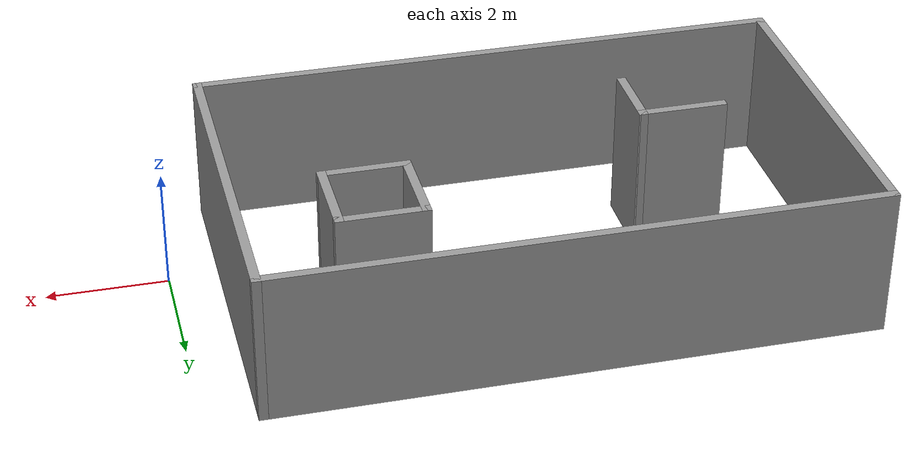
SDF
<?xml version='1.0'?>
<sdf version='1.6'>
  <model name='room2'>
    <pose frame=''>-5.8166 0.9997 0 0 -0 0</pose>
    <link name='Wall_10'>
      <collision name='Wall_10_Collision'>
        <geometry>
          <box>
            <size>1.5 0.15 2.5</size>
          </box>
        </geometry>
        <pose frame=''>0 0 1.25 0 -0 0</pose>
      </collision>
      <visual name='Wall_10_Visual'>
        <pose frame=''>0 0 1.25 0 -0 0</pose>
        <geometry>
          <box>
            <size>1.5 0.15 2.5</size>
          </box>
        </geometry>
        <material>
          <script>
            <uri>file://media/materials/scripts/gazebo.material</uri>
            <name>Gazebo/Grey</name>
          </script>
          <ambient>1 1 1 1</ambient>
        </material>
        <meta>
          <layer>0</layer>
        </meta>
      </visual>
      <pose frame=''>2.78171 1.65282 0 0 -0 0</pose>
    </link>
    <link name='Wall_11'>
      <collision name='Wall_11_Collision'>
        <geometry>
          <box>
            <size>1.5 0.15 2.5</size>
          </box>
        </geometry>
        <pose frame=''>0 0 1.25 0 -0 0</pose>
      </collision>
      <visual name='Wall_11_Visual'>
        <pose frame=''>0 0 1.25 0 -0 0</pose>
        <geometry>
          <box>
            <size>1.5 0.15 2.5</size>
          </box>
        </geometry>
        <material>
          <script>
            <uri>file://media/materials/scripts/gazebo.material</uri>
            <name>Gazebo/Grey</name>
          </script>
          <ambient>1 1 1 1</ambient>
        </material>
        <meta>
          <layer>0</layer>
        </meta>
      </visual>
      <pose frame=''>3.4567 0.977817 0 0 -0 -1.5708</pose>
    </link>
    <link name='Wall_12'>
      <collision name='Wall_12_Collision'>
        <geometry>
          <box>
            <size>1.5 0.15 2.5</size>
          </box>
        </geometry>
        <pose frame=''>0 0 1.25 0 -0 0</pose>
      </collision>
      <visual name='Wall_12_Visual'>
        <pose frame=''>0 0 1.25 0 -0 0</pose>
        <geometry>
          <box>
            <size>1.5 0.15 2.5</size>
          </box>
        </geometry>
        <material>
          <script>
            <uri>file://media/materials/scripts/gazebo.material</uri>
            <name>Gazebo/Grey</name>
          </script>
          <ambient>1 1 1 1</ambient>
        </material>
        <meta>
          <layer>0</layer>
        </meta>
      </visual>
      <pose frame=''>2.78171 0.302817 0 0 -0 3.14159</pose>
    </link>
    <link name='Wall_13'>
      <collision name='Wall_13_Collision'>
        <geometry>
          <box>
            <size>1.5 0.15 2.5</size>
          </box>
        </geometry>
        <pose frame=''>0 0 1.25 0 -0 0</pose>
      </collision>
      <visual name='Wall_13_Visual'>
        <pose frame=''>0 0 1.25 0 -0 0</pose>
        <geometry>
          <box>
            <size>1.5 0.15 2.5</size>
          </box>
        </geometry>
        <material>
          <script>
            <uri>file://media/materials/scripts/gazebo.material</uri>
            <name>Gazebo/Grey</name>
          </script>
          <ambient>1 1 1 1</ambient>
        </material>
        <meta>
          <layer>0</layer>
        </meta>
      </visual>
      <pose frame=''>2.1067 0.977817 0 0 -0 1.5708</pose>
    </link>
    <link name='Wall_2'>
      <collision name='Wall_2_Collision'>
        <geometry>
          <box>
            <size>6 0.15 2.5</size>
          </box>
        </geometry>
        <pose frame=''>0 0 1.25 0 -0 0</pose>
      </collision>
      <visual name='Wall_2_Visual'>
        <pose frame=''>0 0 1.25 0 -0 0</pose>
        <geometry>
          <box>
            <size>6 0.15 2.5</size>
          </box>
        </geometry>
        <material>
          <script>
            <uri>file://media/materials/scripts/gazebo.material</uri>
            <name>Gazebo/Grey</name>
          </script>
          <ambient>1 1 1 1</ambient>
        </material>
        <meta>
          <layer>0</layer>
        </meta>
      </visual>
      <pose frame=''>-4.925 0 0 0 -0 -1.5708</pose>
    </link>
    <link name='Wall_3'>
      <collision name='Wall_3_Collision'>
        <geometry>
          <box>
            <size>10 0.15 2.5</size>
          </box>
        </geometry>
        <pose frame=''>0 0 1.25 0 -0 0</pose>
      </collision>
      <visual name='Wall_3_Visual'>
        <pose frame=''>0 0 1.25 0 -0 0</pose>
        <geometry>
          <box>
            <size>10 0.15 2.5</size>
          </box>
        </geometry>
        <material>
          <script>
            <uri>file://media/materials/scripts/gazebo.material</uri>
            <name>Gazebo/Grey</name>
          </script>
          <ambient>1 1 1 1</ambient>
        </material>
        <meta>
          <layer>0</layer>
        </meta>
      </visual>
      <pose frame=''>0 -2.925 0 0 -0 0</pose>
    </link>
    <link name='Wall_4'>
      <collision name='Wall_4_Collision'>
        <geometry>
          <box>
            <size>6 0.15 2.5</size>
          </box>
        </geometry>
        <pose frame=''>0 0 1.25 0 -0 0</pose>
      </collision>
      <visual name='Wall_4_Visual'>
        <pose frame=''>0 0 1.25 0 -0 0</pose>
        <geometry>
          <box>
            <size>6 0.15 2.5</size>
          </box>
        </geometry>
        <material>
          <script>
            <uri>file://media/materials/scripts/gazebo.material</uri>
            <name>Gazebo/Grey</name>
          </script>
          <ambient>1 1 1 1</ambient>
        </material>
        <meta>
          <layer>0</layer>
        </meta>
      </visual>
      <pose frame=''>4.925 0 0 0 -0 1.5708</pose>
    </link>
    <link name='Wall_5'>
      <collision name='Wall_5_Collision'>
        <geometry>
          <box>
            <size>10 0.15 2.5</size>
          </box>
        </geometry>
        <pose frame=''>0 0 1.25 0 -0 0</pose>
      </collision>
      <visual name='Wall_5_Visual'>
        <pose frame=''>0 0 1.25 0 -0 0</pose>
        <geometry>
          <box>
            <size>10 0.15 2.5</size>
          </box>
        </geometry>
        <material>
          <script>
            <uri>file://media/materials/scripts/gazebo.material</uri>
            <name>Gazebo/Grey</name>
          </script>
          <ambient>1 1 1 1</ambient>
        </material>
        <meta>
          <layer>0</layer>
        </meta>
      </visual>
      <pose frame=''>0 2.925 0 0 -0 3.14159</pose>
    </link>
    <link name='Wall_7'>
      <collision name='Wall_7_Collision'>
        <geometry>
          <box>
            <size>1.5 0.15 2.5</size>
          </box>
        </geometry>
        <pose frame=''>0 0 1.25 0 -0 0</pose>
      </collision>
      <visual name='Wall_7_Visual'>
        <pose frame=''>0 0 1.25 0 -0 0</pose>
        <geometry>
          <box>
            <size>1.5 0.15 2.5</size>
          </box>
        </geometry>
        <material>
          <script>
            <uri>file://media/materials/scripts/gazebo.material</uri>
            <name>Gazebo/Grey</name>
          </script>
          <ambient>1 1 1 1</ambient>
        </material>
        <meta>
          <layer>0</layer>
        </meta>
      </visual>
      <pose frame=''>-2.63086 -0.336416 0 0 -0 0</pose>
    </link>
    <link name='Wall_8'>
      <collision name='Wall_8_Collision'>
        <geometry>
          <box>
            <size>1.25 0.15 2.5</size>
          </box>
        </geometry>
        <pose frame=''>0 0 1.25 0 -0 0</pose>
      </collision>
      <visual name='Wall_8_Visual'>
        <pose frame=''>0 0 1.25 0 -0 0</pose>
        <geometry>
          <box>
            <size>1.25 0.15 2.5</size>
          </box>
        </geometry>
        <material>
          <script>
            <uri>file://media/materials/scripts/gazebo.material</uri>
            <name>Gazebo/Grey</name>
          </script>
          <ambient>1 1 1 1</ambient>
        </material>
        <meta>
          <layer>0</layer>
        </meta>
      </visual>
      <pose frame=''>-1.95586 -0.886416 0 0 -0 -1.5708</pose>
    </link>
    <static>1</static>
  </model>
</sdf>
